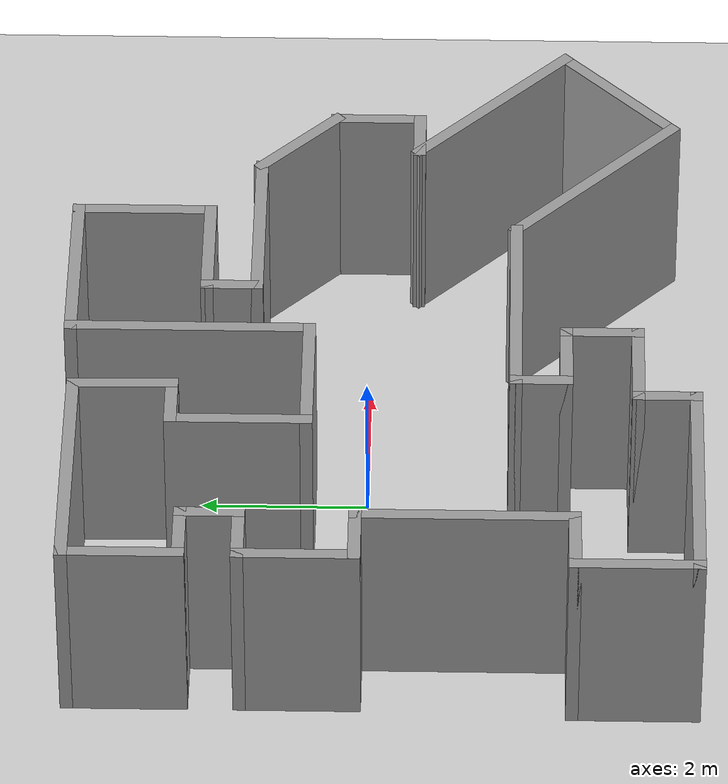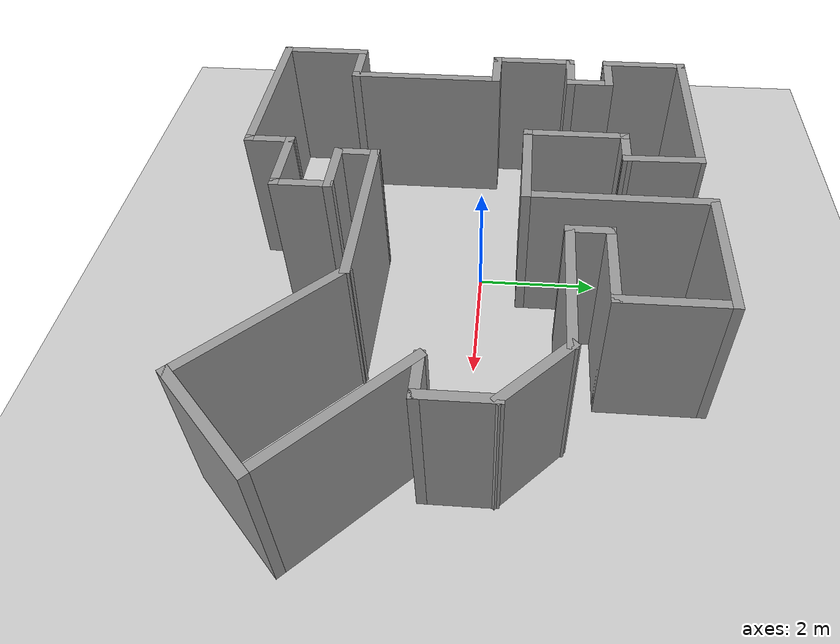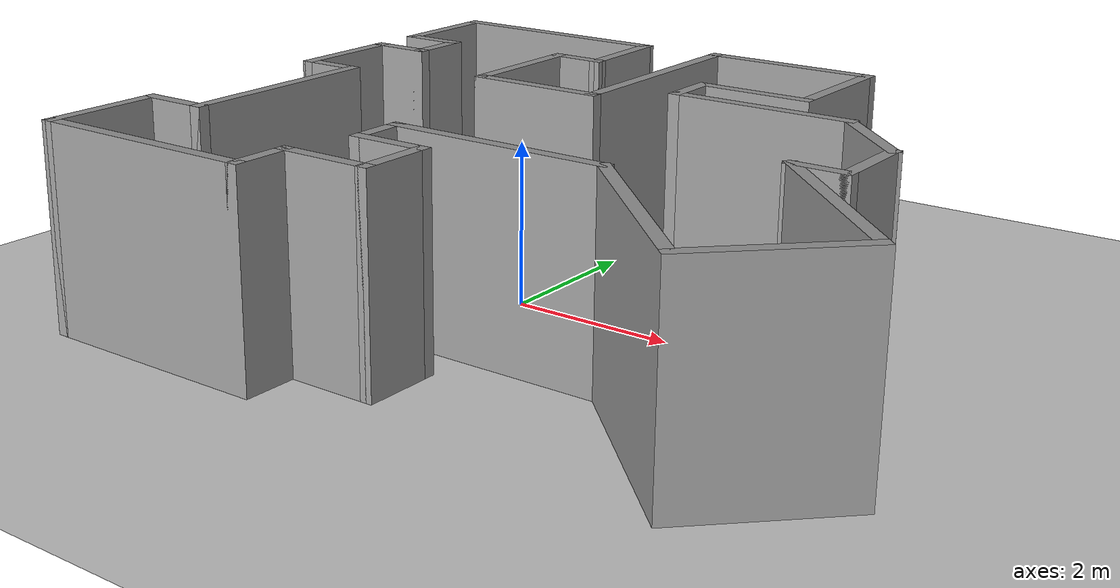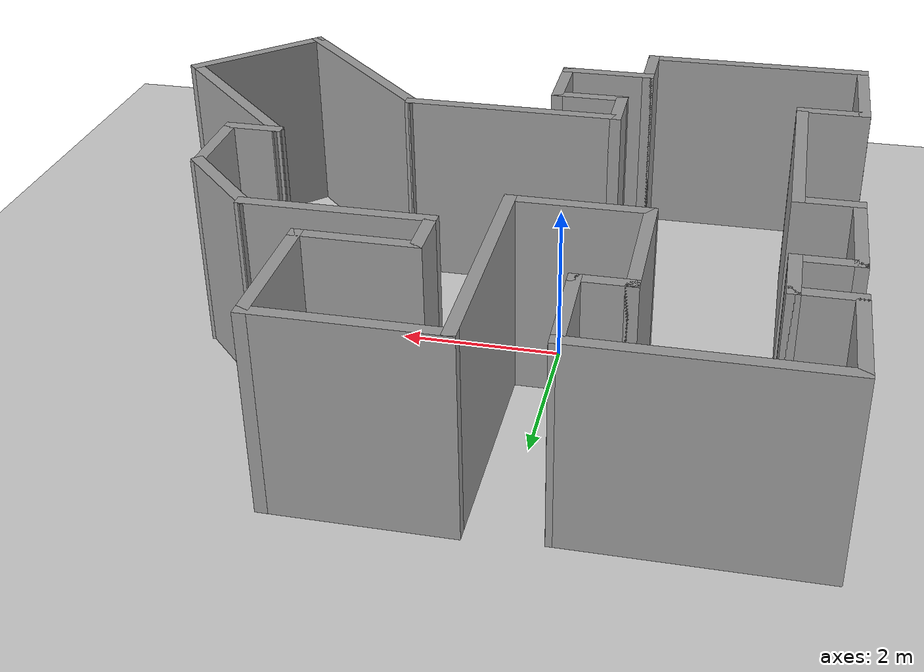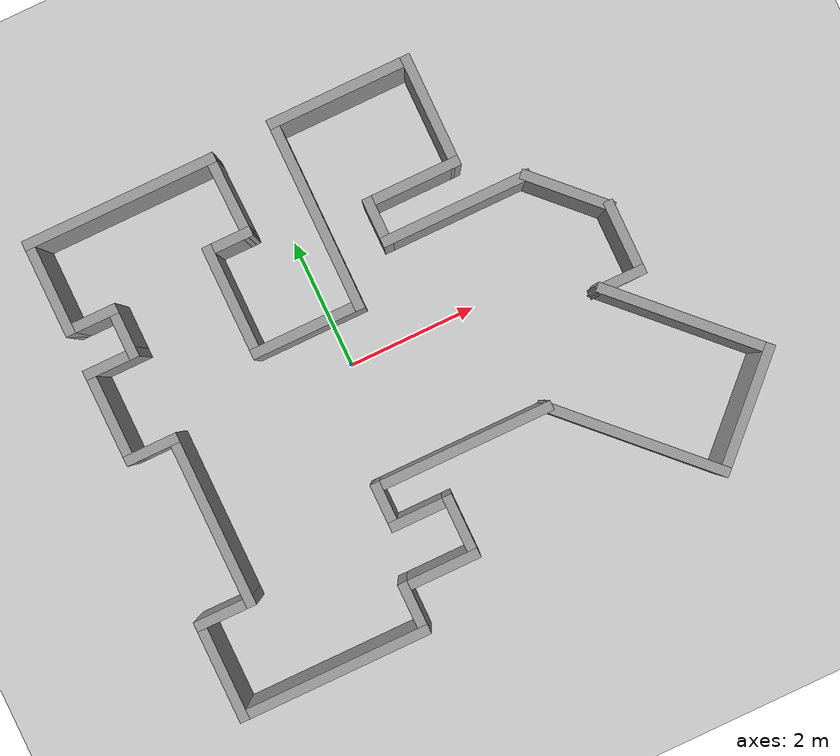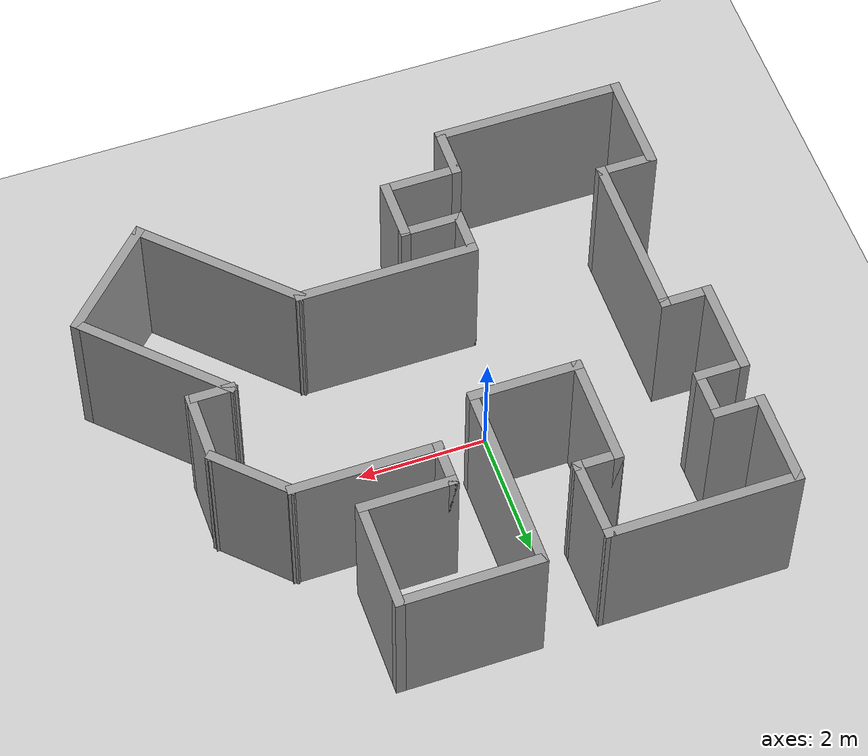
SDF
<sdf version="1.6">
 <world name="default">
  <light name="sun" type="directional">
   <pose>0 0 10 0 -0 0</pose>
   <diffuse>0.8 0.8 0.8 1</diffuse>
   <specular>0.1 0.1 0.1 1</specular>
   <attenuation>
    <range>1000</range>
    <constant>0.9</constant>
    <linear>0.01</linear>
    <quadratic>0.001</quadratic>
   </attenuation>
   <direction>-0.5 0.5 -1</direction>
  </light>
  <model name="ground_plane">
   <static>1</static>
   <link name="link">
    <collision name="collision">
     <geometry><plane><normal>0 0 1</normal><size>100 100</size></plane></geometry>
     <surface><friction><ode><mu>100</mu><mu2>50</mu2></ode></friction></surface>
    </collision>
    <visual name="visual">
     <cast_shadows>0</cast_shadows>
     <geometry><plane><normal>0 0 1</normal><size>100 100</size></plane></geometry>
     <material>
      <script><uri>file://media/materials/scripts/gazebo.material</uri><name>Gazebo/Grey</name></script>
     </material>
    </visual>
   </link>
  </model>
  <gravity>0 0 -9.8</gravity>
  <magnetic_field>6e-06 2.3e-05 -4.2e-05</magnetic_field>
  <atmosphere type="adiabatic"/>
  <physics name="default_physics" default="0" type="ode">
   <max_step_size>0.001</max_step_size>
   <real_time_factor>1</real_time_factor>
   <real_time_update_rate>1000</real_time_update_rate>
  </physics>
  <scene><ambient>0.4 0.4 0.4 1</ambient><background>0.7 0.7 0.7 1</background><shadows>1</shadows></scene>
  <spherical_coordinates>
   <surface_model>EARTH_WGS84</surface_model>
   <latitude_deg>0</latitude_deg>
   <longitude_deg>0</longitude_deg>
   <elevation>0</elevation>
   <heading_deg>0</heading_deg>
  </spherical_coordinates>
  <model name="map2">
   <pose>1.01701 -0.17278 0 0 -0 0</pose>
   <link name="Wall_1">
    <collision name="Wall_1_Collision">
     <geometry><box><size>3 0.15 2.5</size></box></geometry>
     <pose>0 0 1.25 0 -0 0</pose>
    </collision>
    <visual name="Wall_1_Visual">
     <pose>0 0 1.25 0 -0 0</pose>
     <geometry><box><size>3 0.15 2.5</size></box></geometry>
     <material>
      <script><uri>file://media/materials/scripts/gazebo.material</uri><name>Gazebo/Grey</name></script>
      <ambient>1 1 1 1</ambient>
     </material>
    </visual>
    <pose>-2.98213 3.64254 0 0 -0 3.14159</pose>
   </link>
   <link name="Wall_10">
    <collision name="Wall_10_Collision">
     <geometry><box><size>0.83 0.15 2.5</size></box></geometry>
     <pose>0 0 1.25 0 -0 0</pose>
    </collision>
    <visual name="Wall_10_Visual">
     <pose>0 0 1.25 0 -0 0</pose>
     <geometry><box><size>0.83 0.15 2.5</size></box></geometry>
     <material>
      <script><uri>file://media/materials/scripts/gazebo.material</uri><name>Gazebo/Grey</name></script>
      <ambient>1 1 1 1</ambient>
     </material>
    </visual>
    <pose>-4.06713 0.262543 0 0 -0 0</pose>
   </link>
   <link name="Wall_12">
    <collision name="Wall_12_Collision">
     <geometry><box><size>2.7 0.15 2.5</size></box></geometry>
     <pose>0 0 1.25 0 -0 0</pose>
    </collision>
    <visual name="Wall_12_Visual">
     <pose>0 0 1.25 0 -0 0</pose>
     <geometry><box><size>2.7 0.15 2.5</size></box></geometry>
     <material>
      <script><uri>file://media/materials/scripts/gazebo.material</uri><name>Gazebo/Grey</name></script>
      <ambient>1 1 1 1</ambient>
     </material>
    </visual>
    <pose>-3.72713 -1.01246 0 0 0 -1.5708</pose>
   </link>
   <link name="Wall_14">
    <collision name="Wall_14_Collision">
     <geometry><box><size>0.93 0.15 2.5</size></box></geometry>
     <pose>0 0 1.25 0 -0 0</pose>
    </collision>
    <visual name="Wall_14_Visual">
     <pose>0 0 1.25 0 -0 0</pose>
     <geometry><box><size>0.93 0.15 2.5</size></box></geometry>
     <material>
      <script><uri>file://media/materials/scripts/gazebo.material</uri><name>Gazebo/Grey</name></script>
      <ambient>1 1 1 1</ambient>
     </material>
    </visual>
    <pose>-4.11713 -2.28746 0 0 -0 3.14159</pose>
   </link>
   <link name="Wall_16">
    <collision name="Wall_16_Collision">
     <geometry><box><size>1.583 0.15 2.5</size></box></geometry>
     <pose>0 0 1.25 0 -0 0</pose>
    </collision>
    <visual name="Wall_16_Visual">
     <pose>0 0 1.25 0 -0 0</pose>
     <geometry><box><size>1.583 0.15 2.5</size></box></geometry>
     <material>
      <script><uri>file://media/materials/scripts/gazebo.material</uri><name>Gazebo/Grey</name></script>
      <ambient>1 1 1 1</ambient>
     </material>
    </visual>
    <pose>-4.50713 -3.00396 0 0 0 -1.5708</pose>
   </link>
   <link name="Wall_18">
    <collision name="Wall_18_Collision">
     <geometry><box><size>3 0.15 2.5</size></box></geometry>
     <pose>0 0 1.25 0 -0 0</pose>
    </collision>
    <visual name="Wall_18_Visual">
     <pose>0 0 1.25 0 -0 0</pose>
     <geometry><box><size>3 0.15 2.5</size></box></geometry>
     <material>
      <script><uri>file://media/materials/scripts/gazebo.material</uri><name>Gazebo/Grey</name></script>
      <ambient>1 1 1 1</ambient>
     </material>
    </visual>
    <pose>-3.08213 -3.72046 0 0 -0 0</pose>
   </link>
   <link name="Wall_19">
    <collision name="Wall_19_Collision">
     <geometry><box><size>0.83 0.15 2.5</size></box></geometry>
     <pose>0 0 1.25 0 -0 0</pose>
    </collision>
    <visual name="Wall_19_Visual">
     <pose>0 0 1.25 0 -0 0</pose>
     <geometry><box><size>0.83 0.15 2.5</size></box></geometry>
     <material>
      <script><uri>file://media/materials/scripts/gazebo.material</uri><name>Gazebo/Grey</name></script>
      <ambient>1 1 1 1</ambient>
     </material>
    </visual>
    <pose>-1.65713 -3.38046 0 0 -0 1.5708</pose>
   </link>
   <link name="Wall_2">
    <collision name="Wall_2_Collision">
     <geometry><box><size>1.5 0.15 2.5</size></box></geometry>
     <pose>0 0 1.25 0 -0 0</pose>
    </collision>
    <visual name="Wall_2_Visual">
     <pose>0 0 1.25 0 -0 0</pose>
     <geometry><box><size>1.5 0.15 2.5</size></box></geometry>
     <material>
      <script><uri>file://media/materials/scripts/gazebo.material</uri><name>Gazebo/Grey</name></script>
      <ambient>1 1 1 1</ambient>
     </material>
    </visual>
    <pose>-4.40713 2.96754 0 0 0 -1.5708</pose>
   </link>
   <link name="Wall_21">
    <collision name="Wall_21_Collision">
     <geometry><box><size>1.25 0.15 2.5</size></box></geometry>
     <pose>0 0 1.25 0 -0 0</pose>
    </collision>
    <visual name="Wall_21_Visual">
     <pose>0 0 1.25 0 -0 0</pose>
     <geometry><box><size>1.25 0.15 2.5</size></box></geometry>
     <material>
      <script><uri>file://media/materials/scripts/gazebo.material</uri><name>Gazebo/Grey</name></script>
      <ambient>1 1 1 1</ambient>
     </material>
    </visual>
    <pose>-1.10713 -3.04046 0 0 -0 0</pose>
   </link>
   <link name="Wall_25">
    <collision name="Wall_25_Collision">
     <geometry><box><size>1 0.15 2.5</size></box></geometry>
     <pose>0 0 1.25 0 -0 0</pose>
    </collision>
    <visual name="Wall_25_Visual">
     <pose>0 0 1.25 0 -0 0</pose>
     <geometry><box><size>1 0.15 2.5</size></box></geometry>
     <material>
      <script><uri>file://media/materials/scripts/gazebo.material</uri><name>Gazebo/Grey</name></script>
      <ambient>1 1 1 1</ambient>
     </material>
    </visual>
    <pose>-0.55713 -2.61546 0 0 -0 1.5708</pose>
   </link>
   <link name="Wall_26">
    <collision name="Wall_26_Collision">
     <geometry><box><size>1 0.15 2.5</size></box></geometry>
     <pose>0 0 1.25 0 -0 0</pose>
    </collision>
    <visual name="Wall_26_Visual">
     <pose>0 0 1.25 0 -0 0</pose>
     <geometry><box><size>1 0.15 2.5</size></box></geometry>
     <material>
      <script><uri>file://media/materials/scripts/gazebo.material</uri><name>Gazebo/Grey</name></script>
      <ambient>1 1 1 1</ambient>
     </material>
    </visual>
    <pose>-0.98213 -2.19046 0 0 -0 3.14159</pose>
   </link>
   <link name="Wall_27">
    <collision name="Wall_27_Collision">
     <geometry><box><size>0.75 0.15 2.5</size></box></geometry>
     <pose>0 0 1.25 0 -0 0</pose>
    </collision>
    <visual name="Wall_27_Visual">
     <pose>0 0 1.25 0 -0 0</pose>
     <geometry><box><size>0.75 0.15 2.5</size></box></geometry>
     <material>
      <script><uri>file://media/materials/scripts/gazebo.material</uri><name>Gazebo/Grey</name></script>
      <ambient>1 1 1 1</ambient>
     </material>
    </visual>
    <pose>-1.40713 -1.89046 0 0 -0 1.5708</pose>
   </link>
   <link name="Wall_28">
    <collision name="Wall_28_Collision">
     <geometry><box><size>2.83 0.15 2.5</size></box></geometry>
     <pose>0 0 1.25 0 -0 0</pose>
    </collision>
    <visual name="Wall_28_Visual">
     <pose>0 0 1.25 0 -0 0</pose>
     <geometry><box><size>2.83 0.15 2.5</size></box></geometry>
     <material>
      <script><uri>file://media/materials/scripts/gazebo.material</uri><name>Gazebo/Grey</name></script>
      <ambient>1 1 1 1</ambient>
     </material>
    </visual>
    <pose>-0.06713 -1.59046 0 0 -0 0</pose>
   </link>
   <link name="Wall_3">
    <collision name="Wall_3_Collision">
     <geometry><box><size>0.83 0.15 2.5</size></box></geometry>
     <pose>0 0 1.25 0 -0 0</pose>
    </collision>
    <visual name="Wall_3_Visual">
     <pose>0 0 1.25 0 -0 0</pose>
     <geometry><box><size>0.83 0.15 2.5</size></box></geometry>
     <material>
      <script><uri>file://media/materials/scripts/gazebo.material</uri><name>Gazebo/Grey</name></script>
      <ambient>1 1 1 1</ambient>
     </material>
    </visual>
    <pose>-4.06713 2.29254 0 0 -0 0</pose>
   </link>
   <link name="Wall_30">
    <collision name="Wall_30_Collision">
     <geometry><box><size>2.83 0.15 2.5</size></box></geometry>
     <pose>0 0 1.25 0 -0 0</pose>
    </collision>
    <visual name="Wall_30_Visual">
     <pose>0 0 1.25 0 -0 0</pose>
     <geometry><box><size>2.83 0.15 2.5</size></box></geometry>
     <material>
      <script><uri>file://media/materials/scripts/gazebo.material</uri><name>Gazebo/Grey</name></script>
      <ambient>1 1 1 1</ambient>
     </material>
    </visual>
    <pose>2.22039 -2.53798 0 0 0 -0.785398</pose>
   </link>
   <link name="Wall_32">
    <collision name="Wall_32_Collision">
     <geometry><box><size>2 0.15 2.5</size></box></geometry>
     <pose>0 0 1.25 0 -0 0</pose>
    </collision>
    <visual name="Wall_32_Visual">
     <pose>0 0 1.25 0 -0 0</pose>
     <geometry><box><size>2 0.15 2.5</size></box></geometry>
     <material>
      <script><uri>file://media/materials/scripts/gazebo.material</uri><name>Gazebo/Grey</name></script>
      <ambient>1 1 1 1</ambient>
     </material>
    </visual>
    <pose>3.82199 -2.83143 0 0 -0 0.785398</pose>
   </link>
   <link name="Wall_33">
    <collision name="Wall_33_Collision">
     <geometry><box><size>2.67 0.15 2.5</size></box></geometry>
     <pose>0 0 1.25 0 -0 0</pose>
    </collision>
    <visual name="Wall_33_Visual">
     <pose>0 0 1.25 0 -0 0</pose>
     <geometry><box><size>2.67 0.15 2.5</size></box></geometry>
     <material>
      <script><uri>file://media/materials/scripts/gazebo.material</uri><name>Gazebo/Grey</name></script>
      <ambient>1 1 1 1</ambient>
     </material>
    </visual>
    <pose>3.58511 -1.2864 0 0 -0 2.35619</pose>
   </link>
   <link name="Wall_35">
    <collision name="Wall_35_Collision">
     <geometry><box><size>0.75 0.15 2.5</size></box></geometry>
     <pose>0 0 1.25 0 -0 0</pose>
    </collision>
    <visual name="Wall_35_Visual">
     <pose>0 0 1.25 0 -0 0</pose>
     <geometry><box><size>0.75 0.15 2.5</size></box></geometry>
     <material>
      <script><uri>file://media/materials/scripts/gazebo.material</uri><name>Gazebo/Grey</name></script>
      <ambient>1 1 1 1</ambient>
     </material>
    </visual>
    <pose>2.99416 -0.395447 0 0 -0 0</pose>
   </link>
   <link name="Wall_36">
    <collision name="Wall_36_Collision">
     <geometry><box><size>1.17 0.15 2.5</size></box></geometry>
     <pose>0 0 1.25 0 -0 0</pose>
    </collision>
    <visual name="Wall_36_Visual">
     <pose>0 0 1.25 0 -0 0</pose>
     <geometry><box><size>1.17 0.15 2.5</size></box></geometry>
     <material>
      <script><uri>file://media/materials/scripts/gazebo.material</uri><name>Gazebo/Grey</name></script>
      <ambient>1 1 1 1</ambient>
     </material>
    </visual>
    <pose>3.29415 0.114553 0 0 -0 1.5708</pose>
   </link>
   <link name="Wall_38">
    <collision name="Wall_38_Collision">
     <geometry><box><size>1.417 0.15 2.5</size></box></geometry>
     <pose>0 0 1.25 0 -0 0</pose>
    </collision>
    <visual name="Wall_38_Visual">
     <pose>0 0 1.25 0 -0 0</pose>
     <geometry><box><size>1.417 0.15 2.5</size></box></geometry>
     <material>
      <script><uri>file://media/materials/scripts/gazebo.material</uri><name>Gazebo/Grey</name></script>
      <ambient>1 1 1 1</ambient>
     </material>
    </visual>
    <pose>2.8462 1.07251 0 0 -0 2.35619</pose>
   </link>
   <link name="Wall_40">
    <collision name="Wall_40_Collision">
     <geometry><box><size>2.333 0.15 2.5</size></box></geometry>
     <pose>0 0 1.25 0 -0 0</pose>
    </collision>
    <visual name="Wall_40_Visual">
     <pose>0 0 1.25 0 -0 0</pose>
     <geometry><box><size>2.333 0.15 2.5</size></box></geometry>
     <material>
      <script><uri>file://media/materials/scripts/gazebo.material</uri><name>Gazebo/Grey</name></script>
      <ambient>1 1 1 1</ambient>
     </material>
    </visual>
    <pose>1.30675 1.52046 0 0 -0 3.14159</pose>
   </link>
   <link name="Wall_45">
    <collision name="Wall_45_Collision">
     <geometry><box><size>0.75 0.15 2.5</size></box></geometry>
     <pose>0 0 1.25 0 -0 0</pose>
    </collision>
    <visual name="Wall_45_Visual">
     <pose>0 0 1.25 0 -0 0</pose>
     <geometry><box><size>0.75 0.15 2.5</size></box></geometry>
     <material>
      <script><uri>file://media/materials/scripts/gazebo.material</uri><name>Gazebo/Grey</name></script>
      <ambient>1 1 1 1</ambient>
     </material>
    </visual>
    <pose>0.215251 1.82046 0 0 -0 1.5708</pose>
   </link>
   <link name="Wall_46">
    <collision name="Wall_46_Collision">
     <geometry><box><size>1.5 0.15 2.5</size></box></geometry>
     <pose>0 0 1.25 0 -0 0</pose>
    </collision>
    <visual name="Wall_46_Visual">
     <pose>0 0 1.25 0 -0 0</pose>
     <geometry><box><size>1.5 0.15 2.5</size></box></geometry>
     <material>
      <script><uri>file://media/materials/scripts/gazebo.material</uri><name>Gazebo/Grey</name></script>
      <ambient>1 1 1 1</ambient>
     </material>
    </visual>
    <pose>0.890251 2.12046 0 0 -0 0</pose>
   </link>
   <link name="Wall_47">
    <collision name="Wall_47_Collision">
     <geometry><box><size>1.75 0.15 2.5</size></box></geometry>
     <pose>0 0 1.25 0 -0 0</pose>
    </collision>
    <visual name="Wall_47_Visual">
     <pose>0 0 1.25 0 -0 0</pose>
     <geometry><box><size>1.75 0.15 2.5</size></box></geometry>
     <material>
      <script><uri>file://media/materials/scripts/gazebo.material</uri><name>Gazebo/Grey</name></script>
      <ambient>1 1 1 1</ambient>
     </material>
    </visual>
    <pose>1.56525 2.92046 0 0 -0 1.5708</pose>
   </link>
   <link name="Wall_48">
    <collision name="Wall_48_Collision">
     <geometry><box><size>2.25 0.15 2.5</size></box></geometry>
     <pose>0 0 1.25 0 -0 0</pose>
    </collision>
    <visual name="Wall_48_Visual">
     <pose>0 0 1.25 0 -0 0</pose>
     <geometry><box><size>2.25 0.15 2.5</size></box></geometry>
     <material>
      <script><uri>file://media/materials/scripts/gazebo.material</uri><name>Gazebo/Grey</name></script>
      <ambient>1 1 1 1</ambient>
     </material>
    </visual>
    <pose>0.515251 3.72046 0 0 -0 3.14159</pose>
   </link>
   <link name="Wall_49">
    <collision name="Wall_49_Collision">
     <geometry><box><size>3 0.15 2.5</size></box></geometry>
     <pose>0 0 1.25 0 -0 0</pose>
    </collision>
    <visual name="Wall_49_Visual">
     <pose>0 0 1.25 0 -0 0</pose>
     <geometry><box><size>3 0.15 2.5</size></box></geometry>
     <material>
      <script><uri>file://media/materials/scripts/gazebo.material</uri><name>Gazebo/Grey</name></script>
      <ambient>1 1 1 1</ambient>
     </material>
    </visual>
    <pose>-0.534749 2.29546 0 0 0 -1.5708</pose>
   </link>
   <link name="Wall_5">
    <collision name="Wall_5_Collision">
     <geometry><box><size>0.83 0.15 2.5</size></box></geometry>
     <pose>0 0 1.25 0 -0 0</pose>
    </collision>
    <visual name="Wall_5_Visual">
     <pose>0 0 1.25 0 -0 0</pose>
     <geometry><box><size>0.83 0.15 2.5</size></box></geometry>
     <material>
      <script><uri>file://media/materials/scripts/gazebo.material</uri><name>Gazebo/Grey</name></script>
      <ambient>1 1 1 1</ambient>
     </material>
    </visual>
    <pose>-3.72713 1.95254 0 0 0 -1.5708</pose>
   </link>
   <link name="Wall_50">
    <collision name="Wall_50_Collision">
     <geometry><box><size>1.75 0.15 2.5</size></box></geometry>
     <pose>0 0 1.25 0 -0 0</pose>
    </collision>
    <visual name="Wall_50_Visual">
     <pose>0 0 1.25 0 -0 0</pose>
     <geometry><box><size>1.75 0.15 2.5</size></box></geometry>
     <material>
      <script><uri>file://media/materials/scripts/gazebo.material</uri><name>Gazebo/Grey</name></script>
      <ambient>1 1 1 1</ambient>
     </material>
    </visual>
    <pose>-1.33475 0.870457 0 0 -0 3.14159</pose>
   </link>
   <link name="Wall_51">
    <collision name="Wall_51_Collision">
     <geometry><box><size>1.75 0.15 2.5</size></box></geometry>
     <pose>0 0 1.25 0 -0 0</pose>
    </collision>
    <visual name="Wall_51_Visual">
     <pose>0 0 1.25 0 -0 0</pose>
     <geometry><box><size>1.75 0.15 2.5</size></box></geometry>
     <material>
      <script><uri>file://media/materials/scripts/gazebo.material</uri><name>Gazebo/Grey</name></script>
      <ambient>1 1 1 1</ambient>
     </material>
    </visual>
    <pose>-2.13475 1.67046 0 0 -0 1.5708</pose>
   </link>
   <link name="Wall_52">
    <collision name="Wall_52_Collision">
     <geometry><box><size>0.75 0.15 2.5</size></box></geometry>
     <pose>0 0 1.25 0 -0 0</pose>
    </collision>
    <visual name="Wall_52_Visual">
     <pose>0 0 1.25 0 -0 0</pose>
     <geometry><box><size>0.75 0.15 2.5</size></box></geometry>
     <material>
      <script><uri>file://media/materials/scripts/gazebo.material</uri><name>Gazebo/Grey</name></script>
      <ambient>1 1 1 1</ambient>
     </material>
    </visual>
    <pose>-1.83475 2.47046 0 0 -0 0</pose>
   </link>
   <link name="Wall_53">
    <collision name="Wall_53_Collision">
     <geometry><box><size>1.3223 0.15 2.5</size></box></geometry>
     <pose>0 0 1.25 0 -0 0</pose>
    </collision>
    <visual name="Wall_53_Visual">
     <pose>0 0 1.25 0 -0 0</pose>
     <geometry><box><size>1.3223 0.15 2.5</size></box></geometry>
     <material>
      <script><uri>file://media/materials/scripts/gazebo.material</uri><name>Gazebo/Grey</name></script>
      <ambient>1 1 1 1</ambient>
     </material>
    </visual>
    <pose>-1.54594 3.0565 0 0 -0 1.58989</pose>
   </link>
   <link name="Wall_7">
    <collision name="Wall_7_Collision">
     <geometry><box><size>0.83 0.15 2.5</size></box></geometry>
     <pose>0 0 1.25 0 -0 0</pose>
    </collision>
    <visual name="Wall_7_Visual">
     <pose>0 0 1.25 0 -0 0</pose>
     <geometry><box><size>0.83 0.15 2.5</size></box></geometry>
     <material>
      <script><uri>file://media/materials/scripts/gazebo.material</uri><name>Gazebo/Grey</name></script>
      <ambient>1 1 1 1</ambient>
     </material>
    </visual>
    <pose>-4.06713 1.61254 0 0 -0 3.14159</pose>
   </link>
   <link name="Wall_9">
    <collision name="Wall_9_Collision">
     <geometry><box><size>1.5 0.15 2.5</size></box></geometry>
     <pose>0 0 1.25 0 -0 0</pose>
    </collision>
    <visual name="Wall_9_Visual">
     <pose>0 0 1.25 0 -0 0</pose>
     <geometry><box><size>1.5 0.15 2.5</size></box></geometry>
     <material>
      <script><uri>file://media/materials/scripts/gazebo.material</uri><name>Gazebo/Grey</name></script>
      <ambient>1 1 1 1</ambient>
     </material>
    </visual>
    <pose>-4.40713 0.937543 0 0 0 -1.5708</pose>
   </link>
   <static>1</static>
  </model>
 </world>
</sdf>
